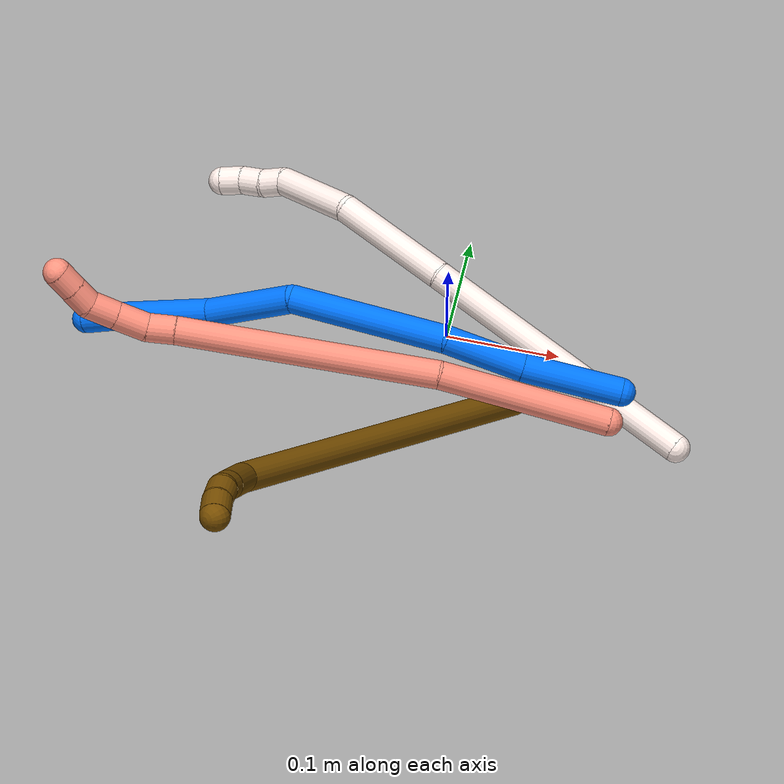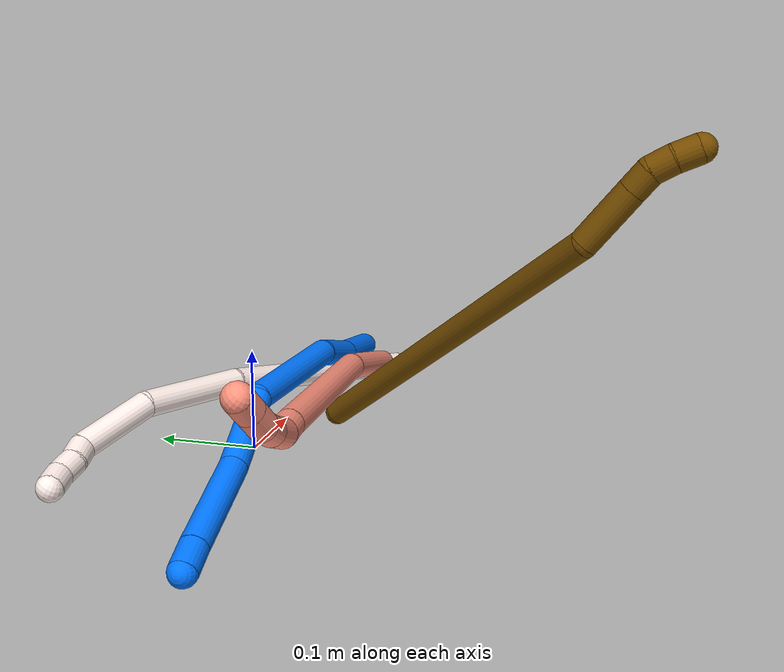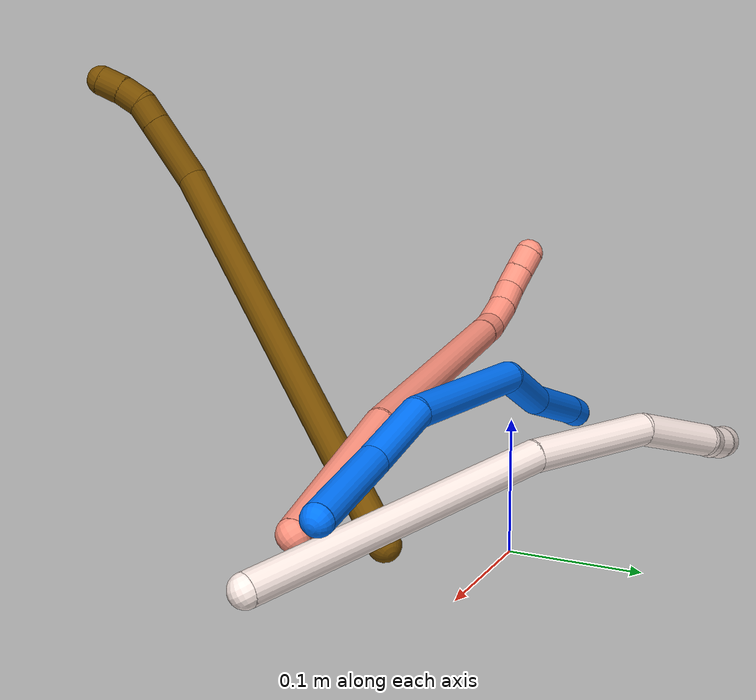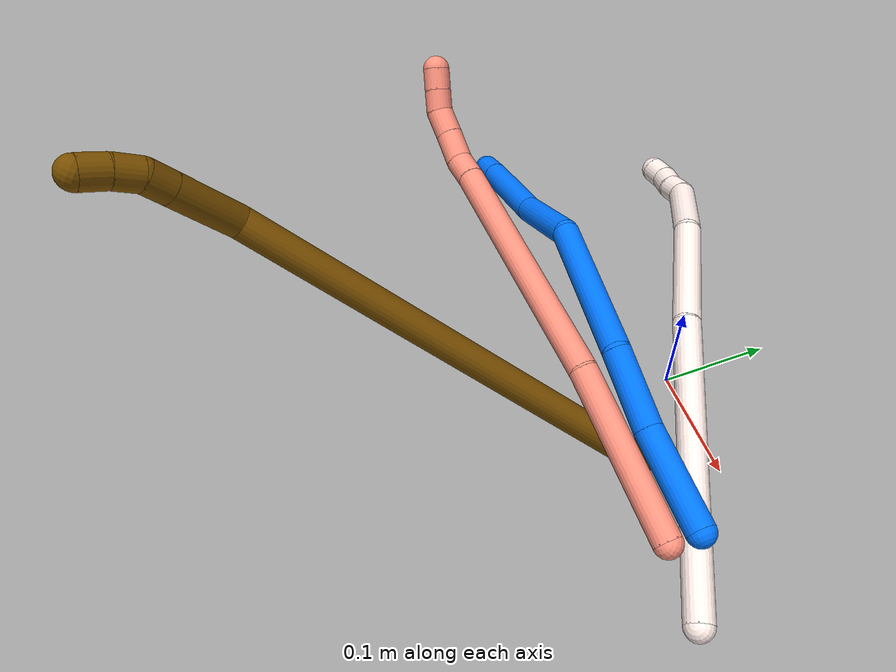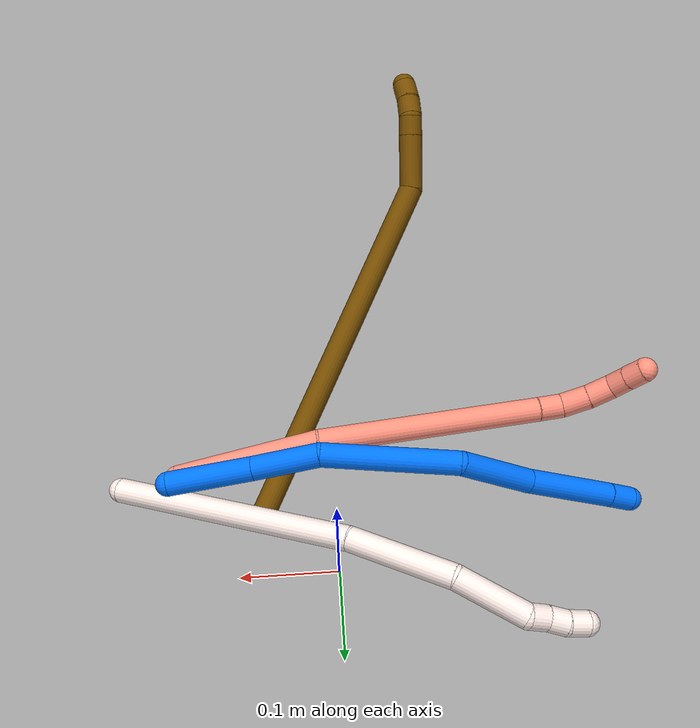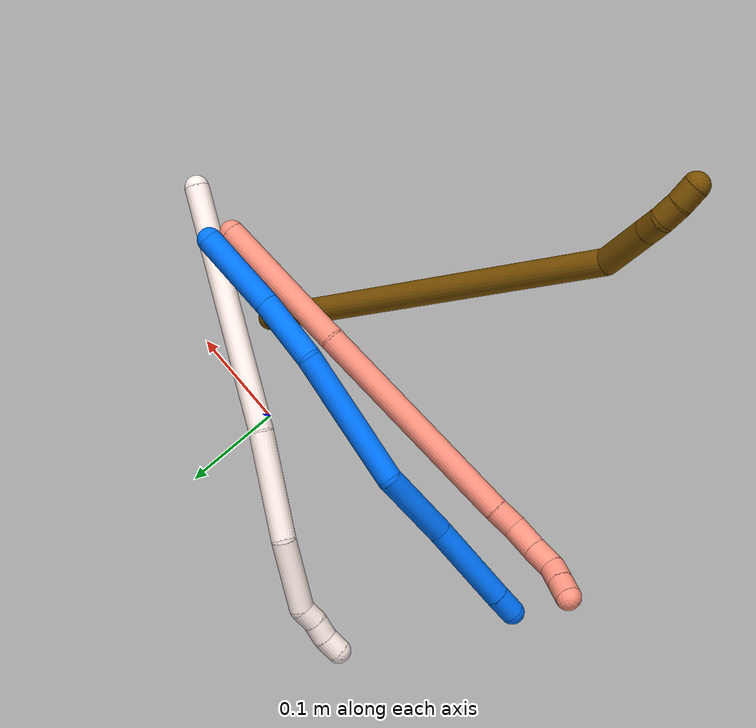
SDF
<sdf version="1.7">
 <world name="default">
  <model name="11">
   <static>0</static>
   <link name="11">
    <collision name="collision-cylinder-e_1_1_4">
     <pose>-0.127508 0.005325 0.014987 -0.341369 -1.4467 0.302076</pose>
     <geometry><cylinder><radius>0.0125</radius><length>0.256993</length></cylinder></geometry>
     <surface>
      <friction><ode><mu>1.16</mu><mu2>1.16</mu2><slip1>0</slip1><slip2>0</slip2></ode></friction>
      <contact><ode><kp>1e+06</kp><kd>1</kd><max_vel>0</max_vel><min_depth>0.001</min_depth></ode></contact>
     </surface>
    </collision>
    <visual name="visual-cylinder-e_1_1_4">
     <pose>-0.127508 0.005325 0.014987 -0.341369 -1.4467 0.302076</pose>
     <geometry><cylinder><radius>0.0125</radius><length>0.256993</length></cylinder></geometry>
     <material><ambient>1 0.933333 0.909804 1</ambient></material>
    </visual>
    <collision name="collision-cylinder-e_2_4_5">
     <pose>-0.307088 0.012869 0.04412 -0.155672 -1.30245 0.118744</pose>
     <geometry><cylinder><radius>0.0125</radius><length>0.108008</length></cylinder></geometry>
     <surface>
      <friction><ode><mu>1.16</mu><mu2>1.16</mu2><slip1>0</slip1><slip2>0</slip2></ode></friction>
      <contact><ode><kp>1e+06</kp><kd>1</kd><max_vel>0</max_vel><min_depth>0.001</min_depth></ode></contact>
     </surface>
    </collision>
    <visual name="visual-cylinder-e_2_4_5">
     <pose>-0.307088 0.012869 0.04412 -0.155672 -1.30245 0.118744</pose>
     <geometry><cylinder><radius>0.0125</radius><length>0.108008</length></cylinder></geometry>
     <material><ambient>1 0.933333 0.909804 1</ambient></material>
    </visual>
    <collision name="collision-cylinder-e_3_5_6">
     <pose>-0.390643 0.022271 0.077167 -0.363103 -0.999888 0.199878</pose>
     <geometry><cylinder><radius>0.0125</radius><length>0.074834</length></cylinder></geometry>
     <surface>
      <friction><ode><mu>1.16</mu><mu2>1.16</mu2><slip1>0</slip1><slip2>0</slip2></ode></friction>
      <contact><ode><kp>1e+06</kp><kd>1</kd><max_vel>0</max_vel><min_depth>0.001</min_depth></ode></contact>
     </surface>
    </collision>
    <visual name="visual-cylinder-e_3_5_6">
     <pose>-0.390643 0.022271 0.077167 -0.363103 -0.999888 0.199878</pose>
     <geometry><cylinder><radius>0.0125</radius><length>0.074834</length></cylinder></geometry>
     <material><ambient>1 0.933333 0.909804 1</ambient></material>
    </visual>
    <collision name="collision-cylinder-e_4_6_7">
     <pose>-0.429254 0.035727 0.099226 -1.1046 -0.792812 0.504893</pose>
     <geometry><cylinder><radius>0.0125</radius><length>0.020015</length></cylinder></geometry>
     <surface>
      <friction><ode><mu>1.16</mu><mu2>1.16</mu2><slip1>0</slip1><slip2>0</slip2></ode></friction>
      <contact><ode><kp>1e+06</kp><kd>1</kd><max_vel>0</max_vel><min_depth>0.001</min_depth></ode></contact>
     </surface>
    </collision>
    <visual name="visual-cylinder-e_4_6_7">
     <pose>-0.429254 0.035727 0.099226 -1.1046 -0.792812 0.504893</pose>
     <geometry><cylinder><radius>0.0125</radius><length>0.020015</length></cylinder></geometry>
     <material><ambient>1 0.933333 0.909804 1</ambient></material>
    </visual>
    <collision name="collision-cylinder-e_5_7_8">
     <pose>-0.44466 0.046396 0.106053 -0.875061 -0.965563 0.480876</pose>
     <geometry><cylinder><radius>0.0125</radius><length>0.020131</length></cylinder></geometry>
     <surface>
      <friction><ode><mu>1.16</mu><mu2>1.16</mu2><slip1>0</slip1><slip2>0</slip2></ode></friction>
      <contact><ode><kp>1e+06</kp><kd>1</kd><max_vel>0</max_vel><min_depth>0.001</min_depth></ode></contact>
     </surface>
    </collision>
    <visual name="visual-cylinder-e_5_7_8">
     <pose>-0.44466 0.046396 0.106053 -0.875061 -0.965563 0.480876</pose>
     <geometry><cylinder><radius>0.0125</radius><length>0.020131</length></cylinder></geometry>
     <material><ambient>1 0.933333 0.909804 1</ambient></material>
    </visual>
    <collision name="collision-cylinder-e_6_8_2">
     <pose>-0.460596 0.056889 0.111816 -1.24026 -0.871171 0.64172</pose>
     <geometry><cylinder><radius>0.0125</radius><length>0.020019</length></cylinder></geometry>
     <surface>
      <friction><ode><mu>1.16</mu><mu2>1.16</mu2><slip1>0</slip1><slip2>0</slip2></ode></friction>
      <contact><ode><kp>1e+06</kp><kd>1</kd><max_vel>0</max_vel><min_depth>0.001</min_depth></ode></contact>
     </surface>
    </collision>
    <visual name="visual-cylinder-e_6_8_2">
     <pose>-0.460596 0.056889 0.111816 -1.24026 -0.871171 0.64172</pose>
     <geometry><cylinder><radius>0.0125</radius><length>0.020019</length></cylinder></geometry>
     <material><ambient>1 0.933333 0.909804 1</ambient></material>
    </visual>
    <collision name="collision-sphere-2">
     <pose>-0.468254 0.062985 0.113908 0 -0 0</pose>
     <geometry><sphere><radius>0.0125</radius></sphere></geometry>
     <surface>
      <friction><ode><mu>1.16</mu><mu2>1.16</mu2><slip1>0</slip1><slip2>0</slip2></ode></friction>
      <contact><ode><kp>1e+06</kp><kd>1</kd><max_vel>0</max_vel><min_depth>0.001</min_depth></ode></contact>
     </surface>
    </collision>
    <visual name="visual-sphere-2">
     <pose>-0.468254 0.062985 0.113908 0 -0 0</pose>
     <geometry><sphere><radius>0.0125</radius></sphere></geometry>
     <material><ambient>1 0.933333 0.909804 1</ambient></material>
    </visual>
    <collision name="collision-sphere-4">
     <pose>-0.255017 0.010649 0.029975 0 -0 0</pose>
     <geometry><sphere><radius>0.0125</radius></sphere></geometry>
     <surface>
      <friction><ode><mu>1.16</mu><mu2>1.16</mu2><slip1>0</slip1><slip2>0</slip2></ode></friction>
      <contact><ode><kp>1e+06</kp><kd>1</kd><max_vel>0</max_vel><min_depth>0.001</min_depth></ode></contact>
     </surface>
    </collision>
    <visual name="visual-sphere-4">
     <pose>-0.255017 0.010649 0.029975 0 -0 0</pose>
     <geometry><sphere><radius>0.0125</radius></sphere></geometry>
     <material><ambient>1 0.933333 0.909804 1</ambient></material>
    </visual>
    <collision name="collision-sphere-1">
     <geometry><sphere><radius>0.0125</radius></sphere></geometry>
     <surface>
      <friction><ode><mu>1.16</mu><mu2>1.16</mu2><slip1>0</slip1><slip2>0</slip2></ode></friction>
      <contact><ode><kp>1e+06</kp><kd>1</kd><max_vel>0</max_vel><min_depth>0.001</min_depth></ode></contact>
     </surface>
    </collision>
    <visual name="visual-sphere-1">
     <geometry><sphere><radius>0.0125</radius></sphere></geometry>
     <material><ambient>1 0.933333 0.909804 1</ambient></material>
    </visual>
    <collision name="collision-sphere-8">
     <pose>-0.452938 0.050792 0.109724 0 -0 0</pose>
     <geometry><sphere><radius>0.0125</radius></sphere></geometry>
     <surface>
      <friction><ode><mu>1.16</mu><mu2>1.16</mu2><slip1>0</slip1><slip2>0</slip2></ode></friction>
      <contact><ode><kp>1e+06</kp><kd>1</kd><max_vel>0</max_vel><min_depth>0.001</min_depth></ode></contact>
     </surface>
    </collision>
    <visual name="visual-sphere-8">
     <pose>-0.452938 0.050792 0.109724 0 -0 0</pose>
     <geometry><sphere><radius>0.0125</radius></sphere></geometry>
     <material><ambient>1 0.933333 0.909804 1</ambient></material>
    </visual>
    <collision name="collision-sphere-5">
     <pose>-0.35916 0.015089 0.058265 0 -0 0</pose>
     <geometry><sphere><radius>0.0125</radius></sphere></geometry>
     <surface>
      <friction><ode><mu>1.16</mu><mu2>1.16</mu2><slip1>0</slip1><slip2>0</slip2></ode></friction>
      <contact><ode><kp>1e+06</kp><kd>1</kd><max_vel>0</max_vel><min_depth>0.001</min_depth></ode></contact>
     </surface>
    </collision>
    <visual name="visual-sphere-5">
     <pose>-0.35916 0.015089 0.058265 0 -0 0</pose>
     <geometry><sphere><radius>0.0125</radius></sphere></geometry>
     <material><ambient>1 0.933333 0.909804 1</ambient></material>
    </visual>
    <collision name="collision-sphere-6">
     <pose>-0.422126 0.029453 0.096069 0 -0 0</pose>
     <geometry><sphere><radius>0.0125</radius></sphere></geometry>
     <surface>
      <friction><ode><mu>1.16</mu><mu2>1.16</mu2><slip1>0</slip1><slip2>0</slip2></ode></friction>
      <contact><ode><kp>1e+06</kp><kd>1</kd><max_vel>0</max_vel><min_depth>0.001</min_depth></ode></contact>
     </surface>
    </collision>
    <visual name="visual-sphere-6">
     <pose>-0.422126 0.029453 0.096069 0 -0 0</pose>
     <geometry><sphere><radius>0.0125</radius></sphere></geometry>
     <material><ambient>1 0.933333 0.909804 1</ambient></material>
    </visual>
    <collision name="collision-sphere-7">
     <pose>-0.436383 0.042001 0.102383 0 -0 0</pose>
     <geometry><sphere><radius>0.0125</radius></sphere></geometry>
     <surface>
      <friction><ode><mu>1.16</mu><mu2>1.16</mu2><slip1>0</slip1><slip2>0</slip2></ode></friction>
      <contact><ode><kp>1e+06</kp><kd>1</kd><max_vel>0</max_vel><min_depth>0.001</min_depth></ode></contact>
     </surface>
    </collision>
    <visual name="visual-sphere-7">
     <pose>-0.436383 0.042001 0.102383 0 -0 0</pose>
     <geometry><sphere><radius>0.0125</radius></sphere></geometry>
     <material><ambient>1 0.933333 0.909804 1</ambient></material>
    </visual>
    <inertial>
     <pose>-0.243867 0.014426 0.041502 0 -0 0</pose>
     <mass>0.5</mass>
     <inertia>
      <ixx>0.000244</ixx>
      <ixy>0</ixy>
      <ixz>0</ixz>
      <iyy>0.001638</iyy>
      <iyz>0</iyz>
      <izz>0.00149</izz>
     </inertia>
    </inertial>
   </link>
   <pose>0.220597 -0.093438 0.036842 -2.69882 0.259289 -0.421633</pose>
  </model>
  <model name="12">
   <static>0</static>
   <link name="12">
    <collision name="collision-cylinder-e_1_1_4">
     <pose>-0.024391 0.030203 0.186428 -0.160614 -0.128439 0.010351</pose>
     <geometry><cylinder><radius>0.0125</radius><length>0.380855</length></cylinder></geometry>
     <surface>
      <friction><ode><mu>1.16</mu><mu2>1.16</mu2><slip1>0</slip1><slip2>0</slip2></ode></friction>
      <contact><ode><kp>1e+06</kp><kd>1</kd><max_vel>0</max_vel><min_depth>0.001</min_depth></ode></contact>
     </surface>
    </collision>
    <visual name="visual-cylinder-e_1_1_4">
     <pose>-0.024391 0.030203 0.186428 -0.160614 -0.128439 0.010351</pose>
     <geometry><cylinder><radius>0.0125</radius><length>0.380855</length></cylinder></geometry>
     <material><ambient>0.466667 0.301961 0 1</ambient></material>
    </visual>
    <collision name="collision-cylinder-e_2_4_5">
     <pose>-0.05005 0.077244 0.395911 -0.630785 -0.044396 0.014488</pose>
     <geometry><cylinder><radius>0.0125</radius><length>0.057153</length></cylinder></geometry>
     <surface>
      <friction><ode><mu>1.16</mu><mu2>1.16</mu2><slip1>0</slip1><slip2>0</slip2></ode></friction>
      <contact><ode><kp>1e+06</kp><kd>1</kd><max_vel>0</max_vel><min_depth>0.001</min_depth></ode></contact>
     </surface>
    </collision>
    <visual name="visual-cylinder-e_2_4_5">
     <pose>-0.05005 0.077244 0.395911 -0.630785 -0.044396 0.014488</pose>
     <geometry><cylinder><radius>0.0125</radius><length>0.057153</length></cylinder></geometry>
     <material><ambient>0.466667 0.301961 0 1</ambient></material>
    </visual>
    <collision name="collision-cylinder-e_3_5_6">
     <pose>-0.051736 0.10014 0.427328 -0.627098 -0.04035 0.013085</pose>
     <geometry><cylinder><radius>0.0125</radius><length>0.020669</length></cylinder></geometry>
     <surface>
      <friction><ode><mu>1.16</mu><mu2>1.16</mu2><slip1>0</slip1><slip2>0</slip2></ode></friction>
      <contact><ode><kp>1e+06</kp><kd>1</kd><max_vel>0</max_vel><min_depth>0.001</min_depth></ode></contact>
     </surface>
    </collision>
    <visual name="visual-cylinder-e_3_5_6">
     <pose>-0.051736 0.10014 0.427328 -0.627098 -0.04035 0.013085</pose>
     <geometry><cylinder><radius>0.0125</radius><length>0.020669</length></cylinder></geometry>
     <material><ambient>0.466667 0.301961 0 1</ambient></material>
    </visual>
    <collision name="collision-cylinder-e_4_6_7">
     <pose>-0.04905 0.110687 0.444269 -0.481827 0.310036 -0.07675</pose>
     <geometry><cylinder><radius>0.0125</radius><length>0.020335</length></cylinder></geometry>
     <surface>
      <friction><ode><mu>1.16</mu><mu2>1.16</mu2><slip1>0</slip1><slip2>0</slip2></ode></friction>
      <contact><ode><kp>1e+06</kp><kd>1</kd><max_vel>0</max_vel><min_depth>0.001</min_depth></ode></contact>
     </surface>
    </collision>
    <visual name="visual-cylinder-e_4_6_7">
     <pose>-0.04905 0.110687 0.444269 -0.481827 0.310036 -0.07675</pose>
     <geometry><cylinder><radius>0.0125</radius><length>0.020335</length></cylinder></geometry>
     <material><ambient>0.466667 0.301961 0 1</ambient></material>
    </visual>
    <collision name="collision-cylinder-e_5_7_2">
     <pose>-0.04125 0.119744 0.461045 -0.508722 0.464205 -0.12275</pose>
     <geometry><cylinder><radius>0.0125</radius><length>0.020987</length></cylinder></geometry>
     <surface>
      <friction><ode><mu>1.16</mu><mu2>1.16</mu2><slip1>0</slip1><slip2>0</slip2></ode></friction>
      <contact><ode><kp>1e+06</kp><kd>1</kd><max_vel>0</max_vel><min_depth>0.001</min_depth></ode></contact>
     </surface>
    </collision>
    <visual name="visual-cylinder-e_5_7_2">
     <pose>-0.04125 0.119744 0.461045 -0.508722 0.464205 -0.12275</pose>
     <geometry><cylinder><radius>0.0125</radius><length>0.020987</length></cylinder></geometry>
     <material><ambient>0.466667 0.301961 0 1</ambient></material>
    </visual>
    <collision name="collision-sphere-2">
     <pose>-0.036552 0.124314 0.46924 0 -0 0</pose>
     <geometry><sphere><radius>0.0125</radius></sphere></geometry>
     <surface>
      <friction><ode><mu>1.16</mu><mu2>1.16</mu2><slip1>0</slip1><slip2>0</slip2></ode></friction>
      <contact><ode><kp>1e+06</kp><kd>1</kd><max_vel>0</max_vel><min_depth>0.001</min_depth></ode></contact>
     </surface>
    </collision>
    <visual name="visual-sphere-2">
     <pose>-0.036552 0.124314 0.46924 0 -0 0</pose>
     <geometry><sphere><radius>0.0125</radius></sphere></geometry>
     <material><ambient>0.466667 0.301961 0 1</ambient></material>
    </visual>
    <collision name="collision-sphere-7">
     <pose>-0.045948 0.115174 0.45285 0 -0 0</pose>
     <geometry><sphere><radius>0.0125</radius></sphere></geometry>
     <surface>
      <friction><ode><mu>1.16</mu><mu2>1.16</mu2><slip1>0</slip1><slip2>0</slip2></ode></friction>
      <contact><ode><kp>1e+06</kp><kd>1</kd><max_vel>0</max_vel><min_depth>0.001</min_depth></ode></contact>
     </surface>
    </collision>
    <visual name="visual-sphere-7">
     <pose>-0.045948 0.115174 0.45285 0 -0 0</pose>
     <geometry><sphere><radius>0.0125</radius></sphere></geometry>
     <material><ambient>0.466667 0.301961 0 1</ambient></material>
    </visual>
    <collision name="collision-sphere-6">
     <pose>-0.052152 0.1062 0.435689 0 -0 0</pose>
     <geometry><sphere><radius>0.0125</radius></sphere></geometry>
     <surface>
      <friction><ode><mu>1.16</mu><mu2>1.16</mu2><slip1>0</slip1><slip2>0</slip2></ode></friction>
      <contact><ode><kp>1e+06</kp><kd>1</kd><max_vel>0</max_vel><min_depth>0.001</min_depth></ode></contact>
     </surface>
    </collision>
    <visual name="visual-sphere-6">
     <pose>-0.052152 0.1062 0.435689 0 -0 0</pose>
     <geometry><sphere><radius>0.0125</radius></sphere></geometry>
     <material><ambient>0.466667 0.301961 0 1</ambient></material>
    </visual>
    <collision name="collision-sphere-5">
     <pose>-0.051319 0.094081 0.418966 0 -0 0</pose>
     <geometry><sphere><radius>0.0125</radius></sphere></geometry>
     <surface>
      <friction><ode><mu>1.16</mu><mu2>1.16</mu2><slip1>0</slip1><slip2>0</slip2></ode></friction>
      <contact><ode><kp>1e+06</kp><kd>1</kd><max_vel>0</max_vel><min_depth>0.001</min_depth></ode></contact>
     </surface>
    </collision>
    <visual name="visual-sphere-5">
     <pose>-0.051319 0.094081 0.418966 0 -0 0</pose>
     <geometry><sphere><radius>0.0125</radius></sphere></geometry>
     <material><ambient>0.466667 0.301961 0 1</ambient></material>
    </visual>
    <collision name="collision-sphere-1">
     <geometry><sphere><radius>0.0125</radius></sphere></geometry>
     <surface>
      <friction><ode><mu>1.16</mu><mu2>1.16</mu2><slip1>0</slip1><slip2>0</slip2></ode></friction>
      <contact><ode><kp>1e+06</kp><kd>1</kd><max_vel>0</max_vel><min_depth>0.001</min_depth></ode></contact>
     </surface>
    </collision>
    <visual name="visual-sphere-1">
     <geometry><sphere><radius>0.0125</radius></sphere></geometry>
     <material><ambient>0.466667 0.301961 0 1</ambient></material>
    </visual>
    <collision name="collision-sphere-4">
     <pose>-0.048782 0.060406 0.372857 0 -0 0</pose>
     <geometry><sphere><radius>0.0125</radius></sphere></geometry>
     <surface>
      <friction><ode><mu>1.16</mu><mu2>1.16</mu2><slip1>0</slip1><slip2>0</slip2></ode></friction>
      <contact><ode><kp>1e+06</kp><kd>1</kd><max_vel>0</max_vel><min_depth>0.001</min_depth></ode></contact>
     </surface>
    </collision>
    <visual name="visual-sphere-4">
     <pose>-0.048782 0.060406 0.372857 0 -0 0</pose>
     <geometry><sphere><radius>0.0125</radius></sphere></geometry>
     <material><ambient>0.466667 0.301961 0 1</ambient></material>
    </visual>
    <inertial>
     <pose>-0.030165 0.045503 0.242345 0 -0 0</pose>
     <mass>0.5</mass>
     <inertia>
      <ixx>0.004647</ixx>
      <ixy>0</ixy>
      <ixz>0</ixz>
      <iyy>0.004635</iyy>
      <iyz>0</iyz>
      <izz>-0.000117</izz>
     </inertia>
    </inertial>
   </link>
   <pose>0.074173 -0.065744 0.020253 1.08458 0.582436 -0.868186</pose>
  </model>
  <model name="14">
   <static>0</static>
   <link name="14">
    <collision name="collision-cylinder-e_1_1_4">
     <pose>-0.00438 0.000592 0.04331 -0.013662 -0.100783 0.000689</pose>
     <geometry><cylinder><radius>0.0125</radius><length>0.08707</length></cylinder></geometry>
     <surface>
      <friction><ode><mu>1.16</mu><mu2>1.16</mu2><slip1>0</slip1><slip2>0</slip2></ode></friction>
      <contact><ode><kp>1e+06</kp><kd>1</kd><max_vel>0</max_vel><min_depth>0.001</min_depth></ode></contact>
     </surface>
    </collision>
    <visual name="visual-cylinder-e_1_1_4">
     <pose>-0.00438 0.000592 0.04331 -0.013662 -0.100783 0.000689</pose>
     <geometry><cylinder><radius>0.0125</radius><length>0.08707</length></cylinder></geometry>
     <material><ambient>0 0.462745 1 1</ambient></material>
    </visual>
    <collision name="collision-cylinder-e_2_4_5">
     <pose>-0.008457 0.002691 0.121534 -0.043148 0.00867 -0.000187</pose>
     <geometry><cylinder><radius>0.0125</radius><length>0.069895</length></cylinder></geometry>
     <surface>
      <friction><ode><mu>1.16</mu><mu2>1.16</mu2><slip1>0</slip1><slip2>0</slip2></ode></friction>
      <contact><ode><kp>1e+06</kp><kd>1</kd><max_vel>0</max_vel><min_depth>0.001</min_depth></ode></contact>
     </surface>
    </collision>
    <visual name="visual-cylinder-e_2_4_5">
     <pose>-0.008457 0.002691 0.121534 -0.043148 0.00867 -0.000187</pose>
     <geometry><cylinder><radius>0.0125</radius><length>0.069895</length></cylinder></geometry>
     <material><ambient>0 0.462745 1 1</ambient></material>
    </visual>
    <collision name="collision-cylinder-e_3_5_6">
     <pose>-0.025207 0.018665 0.222852 -0.214511 -0.245841 0.026602</pose>
     <geometry><cylinder><radius>0.0125</radius><length>0.140138</length></cylinder></geometry>
     <surface>
      <friction><ode><mu>1.16</mu><mu2>1.16</mu2><slip1>0</slip1><slip2>0</slip2></ode></friction>
      <contact><ode><kp>1e+06</kp><kd>1</kd><max_vel>0</max_vel><min_depth>0.001</min_depth></ode></contact>
     </surface>
    </collision>
    <visual name="visual-cylinder-e_3_5_6">
     <pose>-0.025207 0.018665 0.222852 -0.214511 -0.245841 0.026602</pose>
     <geometry><cylinder><radius>0.0125</radius><length>0.140138</length></cylinder></geometry>
     <material><ambient>0 0.462745 1 1</ambient></material>
    </visual>
    <collision name="collision-cylinder-e_4_6_7">
     <pose>-0.06913 0.039702 0.319373 -0.214781 -0.716946 0.080737</pose>
     <geometry><cylinder><radius>0.0125</radius><length>0.081785</length></cylinder></geometry>
     <surface>
      <friction><ode><mu>1.16</mu><mu2>1.16</mu2><slip1>0</slip1><slip2>0</slip2></ode></friction>
      <contact><ode><kp>1e+06</kp><kd>1</kd><max_vel>0</max_vel><min_depth>0.001</min_depth></ode></contact>
     </surface>
    </collision>
    <visual name="visual-cylinder-e_4_6_7">
     <pose>-0.06913 0.039702 0.319373 -0.214781 -0.716946 0.080737</pose>
     <geometry><cylinder><radius>0.0125</radius><length>0.081785</length></cylinder></geometry>
     <material><ambient>0 0.462745 1 1</ambient></material>
    </visual>
    <collision name="collision-cylinder-e_5_7_8">
     <pose>-0.121868 0.053797 0.388404 -0.191021 -0.578238 0.056978</pose>
     <geometry><cylinder><radius>0.0125</radius><length>0.094659</length></cylinder></geometry>
     <surface>
      <friction><ode><mu>1.16</mu><mu2>1.16</mu2><slip1>0</slip1><slip2>0</slip2></ode></friction>
      <contact><ode><kp>1e+06</kp><kd>1</kd><max_vel>0</max_vel><min_depth>0.001</min_depth></ode></contact>
     </surface>
    </collision>
    <visual name="visual-cylinder-e_5_7_8">
     <pose>-0.121868 0.053797 0.388404 -0.191021 -0.578238 0.056978</pose>
     <geometry><cylinder><radius>0.0125</radius><length>0.094659</length></cylinder></geometry>
     <material><ambient>0 0.462745 1 1</ambient></material>
    </visual>
    <collision name="collision-cylinder-e_6_8_2">
     <pose>-0.155464 0.063328 0.437864 -0.187924 -0.624011 0.060773</pose>
     <geometry><cylinder><radius>0.0125</radius><length>0.026454</length></cylinder></geometry>
     <surface>
      <friction><ode><mu>1.16</mu><mu2>1.16</mu2><slip1>0</slip1><slip2>0</slip2></ode></friction>
      <contact><ode><kp>1e+06</kp><kd>1</kd><max_vel>0</max_vel><min_depth>0.001</min_depth></ode></contact>
     </surface>
    </collision>
    <visual name="visual-cylinder-e_6_8_2">
     <pose>-0.155464 0.063328 0.437864 -0.187924 -0.624011 0.060773</pose>
     <geometry><cylinder><radius>0.0125</radius><length>0.026454</length></cylinder></geometry>
     <material><ambient>0 0.462745 1 1</ambient></material>
    </visual>
    <collision name="collision-sphere-2">
     <pose>-0.163192 0.065333 0.448409 0 -0 0</pose>
     <geometry><sphere><radius>0.0125</radius></sphere></geometry>
     <surface>
      <friction><ode><mu>1.16</mu><mu2>1.16</mu2><slip1>0</slip1><slip2>0</slip2></ode></friction>
      <contact><ode><kp>1e+06</kp><kd>1</kd><max_vel>0</max_vel><min_depth>0.001</min_depth></ode></contact>
     </surface>
    </collision>
    <visual name="visual-sphere-2">
     <pose>-0.163192 0.065333 0.448409 0 -0 0</pose>
     <geometry><sphere><radius>0.0125</radius></sphere></geometry>
     <material><ambient>0 0.462745 1 1</ambient></material>
    </visual>
    <collision name="collision-sphere-4">
     <pose>-0.00876 0.001183 0.08662 0 -0 0</pose>
     <geometry><sphere><radius>0.0125</radius></sphere></geometry>
     <surface>
      <friction><ode><mu>1.16</mu><mu2>1.16</mu2><slip1>0</slip1><slip2>0</slip2></ode></friction>
      <contact><ode><kp>1e+06</kp><kd>1</kd><max_vel>0</max_vel><min_depth>0.001</min_depth></ode></contact>
     </surface>
    </collision>
    <visual name="visual-sphere-4">
     <pose>-0.00876 0.001183 0.08662 0 -0 0</pose>
     <geometry><sphere><radius>0.0125</radius></sphere></geometry>
     <material><ambient>0 0.462745 1 1</ambient></material>
    </visual>
    <collision name="collision-sphere-1">
     <geometry><sphere><radius>0.0125</radius></sphere></geometry>
     <surface>
      <friction><ode><mu>1.16</mu><mu2>1.16</mu2><slip1>0</slip1><slip2>0</slip2></ode></friction>
      <contact><ode><kp>1e+06</kp><kd>1</kd><max_vel>0</max_vel><min_depth>0.001</min_depth></ode></contact>
     </surface>
    </collision>
    <visual name="visual-sphere-1">
     <geometry><sphere><radius>0.0125</radius></sphere></geometry>
     <material><ambient>0 0.462745 1 1</ambient></material>
    </visual>
    <collision name="collision-sphere-8">
     <pose>-0.147736 0.061322 0.427318 0 -0 0</pose>
     <geometry><sphere><radius>0.0125</radius></sphere></geometry>
     <surface>
      <friction><ode><mu>1.16</mu><mu2>1.16</mu2><slip1>0</slip1><slip2>0</slip2></ode></friction>
      <contact><ode><kp>1e+06</kp><kd>1</kd><max_vel>0</max_vel><min_depth>0.001</min_depth></ode></contact>
     </surface>
    </collision>
    <visual name="visual-sphere-8">
     <pose>-0.147736 0.061322 0.427318 0 -0 0</pose>
     <geometry><sphere><radius>0.0125</radius></sphere></geometry>
     <material><ambient>0 0.462745 1 1</ambient></material>
    </visual>
    <collision name="collision-sphere-5">
     <pose>-0.008154 0.004198 0.156447 0 -0 0</pose>
     <geometry><sphere><radius>0.0125</radius></sphere></geometry>
     <surface>
      <friction><ode><mu>1.16</mu><mu2>1.16</mu2><slip1>0</slip1><slip2>0</slip2></ode></friction>
      <contact><ode><kp>1e+06</kp><kd>1</kd><max_vel>0</max_vel><min_depth>0.001</min_depth></ode></contact>
     </surface>
    </collision>
    <visual name="visual-sphere-5">
     <pose>-0.008154 0.004198 0.156447 0 -0 0</pose>
     <geometry><sphere><radius>0.0125</radius></sphere></geometry>
     <material><ambient>0 0.462745 1 1</ambient></material>
    </visual>
    <collision name="collision-sphere-6">
     <pose>-0.04226 0.033132 0.289256 0 -0 0</pose>
     <geometry><sphere><radius>0.0125</radius></sphere></geometry>
     <surface>
      <friction><ode><mu>1.16</mu><mu2>1.16</mu2><slip1>0</slip1><slip2>0</slip2></ode></friction>
      <contact><ode><kp>1e+06</kp><kd>1</kd><max_vel>0</max_vel><min_depth>0.001</min_depth></ode></contact>
     </surface>
    </collision>
    <visual name="visual-sphere-6">
     <pose>-0.04226 0.033132 0.289256 0 -0 0</pose>
     <geometry><sphere><radius>0.0125</radius></sphere></geometry>
     <material><ambient>0 0.462745 1 1</ambient></material>
    </visual>
    <collision name="collision-sphere-7">
     <pose>-0.096 0.046272 0.34949 0 -0 0</pose>
     <geometry><sphere><radius>0.0125</radius></sphere></geometry>
     <surface>
      <friction><ode><mu>1.16</mu><mu2>1.16</mu2><slip1>0</slip1><slip2>0</slip2></ode></friction>
      <contact><ode><kp>1e+06</kp><kd>1</kd><max_vel>0</max_vel><min_depth>0.001</min_depth></ode></contact>
     </surface>
    </collision>
    <visual name="visual-sphere-7">
     <pose>-0.096 0.046272 0.34949 0 -0 0</pose>
     <geometry><sphere><radius>0.0125</radius></sphere></geometry>
     <material><ambient>0 0.462745 1 1</ambient></material>
    </visual>
    <inertial>
     <pose>-0.051615 0.02574 0.235929 0 -0 0</pose>
     <mass>0.5</mass>
     <inertia>
      <ixx>0.000418</ixx>
      <ixy>0</ixy>
      <ixz>0</ixz>
      <iyy>0.000461</iyy>
      <iyz>0</iyz>
      <izz>0.000101</izz>
     </inertia>
    </inertial>
   </link>
   <pose>0.166806 -0.069239 0.070392 -0.858445 -1.18034 0.905548</pose>
  </model>
  <model name="16">
   <static>0</static>
   <link name="16">
    <collision name="collision-cylinder-e_1_1_4">
     <pose>-0.043847 0.053569 0.030477 -1.05354 -0.618356 0.367356</pose>
     <geometry><cylinder><radius>0.0125</radius><length>0.151275</length></cylinder></geometry>
     <surface>
      <friction><ode><mu>1.16</mu><mu2>1.16</mu2><slip1>0</slip1><slip2>0</slip2></ode></friction>
      <contact><ode><kp>1e+06</kp><kd>1</kd><max_vel>0</max_vel><min_depth>0.001</min_depth></ode></contact>
     </surface>
    </collision>
    <visual name="visual-cylinder-e_1_1_4">
     <pose>-0.043847 0.053569 0.030477 -1.05354 -0.618356 0.367356</pose>
     <geometry><cylinder><radius>0.0125</radius><length>0.151275</length></cylinder></geometry>
     <material><ambient>1 0.576471 0.494118 1</ambient></material>
    </visual>
    <collision name="collision-cylinder-e_2_4_5">
     <pose>-0.167652 0.181068 0.095415 -1.1346 -0.77544 0.509138</pose>
     <geometry><cylinder><radius>0.0125</radius><length>0.228444</length></cylinder></geometry>
     <surface>
      <friction><ode><mu>1.16</mu><mu2>1.16</mu2><slip1>0</slip1><slip2>0</slip2></ode></friction>
      <contact><ode><kp>1e+06</kp><kd>1</kd><max_vel>0</max_vel><min_depth>0.001</min_depth></ode></contact>
     </surface>
    </collision>
    <visual name="visual-cylinder-e_2_4_5">
     <pose>-0.167652 0.181068 0.095415 -1.1346 -0.77544 0.509138</pose>
     <geometry><cylinder><radius>0.0125</radius><length>0.228444</length></cylinder></geometry>
     <material><ambient>1 0.576471 0.494118 1</ambient></material>
    </visual>
    <collision name="collision-cylinder-e_3_5_6">
     <pose>-0.256849 0.262443 0.133734 -1.09273 -0.833762 0.526113</pose>
     <geometry><cylinder><radius>0.0125</radius><length>0.024951</length></cylinder></geometry>
     <surface>
      <friction><ode><mu>1.16</mu><mu2>1.16</mu2><slip1>0</slip1><slip2>0</slip2></ode></friction>
      <contact><ode><kp>1e+06</kp><kd>1</kd><max_vel>0</max_vel><min_depth>0.001</min_depth></ode></contact>
     </surface>
    </collision>
    <visual name="visual-cylinder-e_3_5_6">
     <pose>-0.256849 0.262443 0.133734 -1.09273 -0.833762 0.526113</pose>
     <geometry><cylinder><radius>0.0125</radius><length>0.024951</length></cylinder></geometry>
     <material><ambient>1 0.576471 0.494118 1</ambient></material>
    </visual>
    <collision name="collision-cylinder-e_4_6_7">
     <pose>-0.272877 0.280929 0.144395 -1.01851 -0.482308 0.272949</pose>
     <geometry><cylinder><radius>0.0125</radius><length>0.029277</length></cylinder></geometry>
     <surface>
      <friction><ode><mu>1.16</mu><mu2>1.16</mu2><slip1>0</slip1><slip2>0</slip2></ode></friction>
      <contact><ode><kp>1e+06</kp><kd>1</kd><max_vel>0</max_vel><min_depth>0.001</min_depth></ode></contact>
     </surface>
    </collision>
    <visual name="visual-cylinder-e_4_6_7">
     <pose>-0.272877 0.280929 0.144395 -1.01851 -0.482308 0.272949</pose>
     <geometry><cylinder><radius>0.0125</radius><length>0.029277</length></cylinder></geometry>
     <material><ambient>1 0.576471 0.494118 1</ambient></material>
    </visual>
    <collision name="collision-cylinder-e_5_7_8">
     <pose>-0.284738 0.301366 0.158333 -0.921455 -0.405996 0.203626</pose>
     <geometry><cylinder><radius>0.0125</radius><length>0.025683</length></cylinder></geometry>
     <surface>
      <friction><ode><mu>1.16</mu><mu2>1.16</mu2><slip1>0</slip1><slip2>0</slip2></ode></friction>
      <contact><ode><kp>1e+06</kp><kd>1</kd><max_vel>0</max_vel><min_depth>0.001</min_depth></ode></contact>
     </surface>
    </collision>
    <visual name="visual-cylinder-e_5_7_8">
     <pose>-0.284738 0.301366 0.158333 -0.921455 -0.405996 0.203626</pose>
     <geometry><cylinder><radius>0.0125</radius><length>0.025683</length></cylinder></geometry>
     <material><ambient>1 0.576471 0.494118 1</ambient></material>
    </visual>
    <collision name="collision-cylinder-e_6_8_9">
     <pose>-0.28987 0.319418 0.170741 -1.02353 -0.00592 0.003325</pose>
     <geometry><cylinder><radius>0.0125</radius><length>0.020273</length></cylinder></geometry>
     <surface>
      <friction><ode><mu>1.16</mu><mu2>1.16</mu2><slip1>0</slip1><slip2>0</slip2></ode></friction>
      <contact><ode><kp>1e+06</kp><kd>1</kd><max_vel>0</max_vel><min_depth>0.001</min_depth></ode></contact>
     </surface>
    </collision>
    <visual name="visual-cylinder-e_6_8_9">
     <pose>-0.28987 0.319418 0.170741 -1.02353 -0.00592 0.003325</pose>
     <geometry><cylinder><radius>0.0125</radius><length>0.020273</length></cylinder></geometry>
     <material><ambient>1 0.576471 0.494118 1</ambient></material>
    </visual>
    <collision name="collision-cylinder-e_7_9_2">
     <pose>-0.290007 0.336711 0.18115 -1.03445 -0.007652 0.004353</pose>
     <geometry><cylinder><radius>0.0125</radius><length>0.020097</length></cylinder></geometry>
     <surface>
      <friction><ode><mu>1.16</mu><mu2>1.16</mu2><slip1>0</slip1><slip2>0</slip2></ode></friction>
      <contact><ode><kp>1e+06</kp><kd>1</kd><max_vel>0</max_vel><min_depth>0.001</min_depth></ode></contact>
     </surface>
    </collision>
    <visual name="visual-cylinder-e_7_9_2">
     <pose>-0.290007 0.336711 0.18115 -1.03445 -0.007652 0.004353</pose>
     <geometry><cylinder><radius>0.0125</radius><length>0.020097</length></cylinder></geometry>
     <material><ambient>1 0.576471 0.494118 1</ambient></material>
    </visual>
    <collision name="collision-sphere-2">
     <pose>-0.290083 0.345348 0.186284 0 -0 0</pose>
     <geometry><sphere><radius>0.0125</radius></sphere></geometry>
     <surface>
      <friction><ode><mu>1.16</mu><mu2>1.16</mu2><slip1>0</slip1><slip2>0</slip2></ode></friction>
      <contact><ode><kp>1e+06</kp><kd>1</kd><max_vel>0</max_vel><min_depth>0.001</min_depth></ode></contact>
     </surface>
    </collision>
    <visual name="visual-sphere-2">
     <pose>-0.290083 0.345348 0.186284 0 -0 0</pose>
     <geometry><sphere><radius>0.0125</radius></sphere></geometry>
     <material><ambient>1 0.576471 0.494118 1</ambient></material>
    </visual>
    <collision name="collision-sphere-9">
     <pose>-0.28993 0.328074 0.176015 0 -0 0</pose>
     <geometry><sphere><radius>0.0125</radius></sphere></geometry>
     <surface>
      <friction><ode><mu>1.16</mu><mu2>1.16</mu2><slip1>0</slip1><slip2>0</slip2></ode></friction>
      <contact><ode><kp>1e+06</kp><kd>1</kd><max_vel>0</max_vel><min_depth>0.001</min_depth></ode></contact>
     </surface>
    </collision>
    <visual name="visual-sphere-9">
     <pose>-0.28993 0.328074 0.176015 0 -0 0</pose>
     <geometry><sphere><radius>0.0125</radius></sphere></geometry>
     <material><ambient>1 0.576471 0.494118 1</ambient></material>
    </visual>
    <collision name="collision-sphere-4">
     <pose>-0.087693 0.107138 0.060953 0 -0 0</pose>
     <geometry><sphere><radius>0.0125</radius></sphere></geometry>
     <surface>
      <friction><ode><mu>1.16</mu><mu2>1.16</mu2><slip1>0</slip1><slip2>0</slip2></ode></friction>
      <contact><ode><kp>1e+06</kp><kd>1</kd><max_vel>0</max_vel><min_depth>0.001</min_depth></ode></contact>
     </surface>
    </collision>
    <visual name="visual-sphere-4">
     <pose>-0.087693 0.107138 0.060953 0 -0 0</pose>
     <geometry><sphere><radius>0.0125</radius></sphere></geometry>
     <material><ambient>1 0.576471 0.494118 1</ambient></material>
    </visual>
    <collision name="collision-sphere-1">
     <geometry><sphere><radius>0.0125</radius></sphere></geometry>
     <surface>
      <friction><ode><mu>1.16</mu><mu2>1.16</mu2><slip1>0</slip1><slip2>0</slip2></ode></friction>
      <contact><ode><kp>1e+06</kp><kd>1</kd><max_vel>0</max_vel><min_depth>0.001</min_depth></ode></contact>
     </surface>
    </collision>
    <visual name="visual-sphere-1">
     <geometry><sphere><radius>0.0125</radius></sphere></geometry>
     <material><ambient>1 0.576471 0.494118 1</ambient></material>
    </visual>
    <collision name="collision-sphere-8">
     <pose>-0.28981 0.310762 0.165466 0 -0 0</pose>
     <geometry><sphere><radius>0.0125</radius></sphere></geometry>
     <surface>
      <friction><ode><mu>1.16</mu><mu2>1.16</mu2><slip1>0</slip1><slip2>0</slip2></ode></friction>
      <contact><ode><kp>1e+06</kp><kd>1</kd><max_vel>0</max_vel><min_depth>0.001</min_depth></ode></contact>
     </surface>
    </collision>
    <visual name="visual-sphere-8">
     <pose>-0.28981 0.310762 0.165466 0 -0 0</pose>
     <geometry><sphere><radius>0.0125</radius></sphere></geometry>
     <material><ambient>1 0.576471 0.494118 1</ambient></material>
    </visual>
    <collision name="collision-sphere-5">
     <pose>-0.247611 0.254998 0.129877 0 -0 0</pose>
     <geometry><sphere><radius>0.0125</radius></sphere></geometry>
     <surface>
      <friction><ode><mu>1.16</mu><mu2>1.16</mu2><slip1>0</slip1><slip2>0</slip2></ode></friction>
      <contact><ode><kp>1e+06</kp><kd>1</kd><max_vel>0</max_vel><min_depth>0.001</min_depth></ode></contact>
     </surface>
    </collision>
    <visual name="visual-sphere-5">
     <pose>-0.247611 0.254998 0.129877 0 -0 0</pose>
     <geometry><sphere><radius>0.0125</radius></sphere></geometry>
     <material><ambient>1 0.576471 0.494118 1</ambient></material>
    </visual>
    <collision name="collision-sphere-6">
     <pose>-0.266087 0.269888 0.137592 0 -0 0</pose>
     <geometry><sphere><radius>0.0125</radius></sphere></geometry>
     <surface>
      <friction><ode><mu>1.16</mu><mu2>1.16</mu2><slip1>0</slip1><slip2>0</slip2></ode></friction>
      <contact><ode><kp>1e+06</kp><kd>1</kd><max_vel>0</max_vel><min_depth>0.001</min_depth></ode></contact>
     </surface>
    </collision>
    <visual name="visual-sphere-6">
     <pose>-0.266087 0.269888 0.137592 0 -0 0</pose>
     <geometry><sphere><radius>0.0125</radius></sphere></geometry>
     <material><ambient>1 0.576471 0.494118 1</ambient></material>
    </visual>
    <collision name="collision-sphere-7">
     <pose>-0.279667 0.291969 0.151199 0 -0 0</pose>
     <geometry><sphere><radius>0.0125</radius></sphere></geometry>
     <surface>
      <friction><ode><mu>1.16</mu><mu2>1.16</mu2><slip1>0</slip1><slip2>0</slip2></ode></friction>
      <contact><ode><kp>1e+06</kp><kd>1</kd><max_vel>0</max_vel><min_depth>0.001</min_depth></ode></contact>
     </surface>
    </collision>
    <visual name="visual-sphere-7">
     <pose>-0.279667 0.291969 0.151199 0 -0 0</pose>
     <geometry><sphere><radius>0.0125</radius></sphere></geometry>
     <material><ambient>1 0.576471 0.494118 1</ambient></material>
    </visual>
    <inertial>
     <pose>-0.156695 0.170446 0.09028 0 -0 0</pose>
     <mass>0.5</mass>
     <inertia><ixx>0.001273</ixx><ixy>0</ixy><ixz>0</ixz><iyy>0.00134</iyy><iyz>0</iyz><izz>2.6e-05</izz></inertia>
    </inertial>
   </link>
   <pose>0.160612 -0.090971 0.054267 0.525112 -0.630238 0.482638</pose>
  </model>
 </world>
</sdf>
